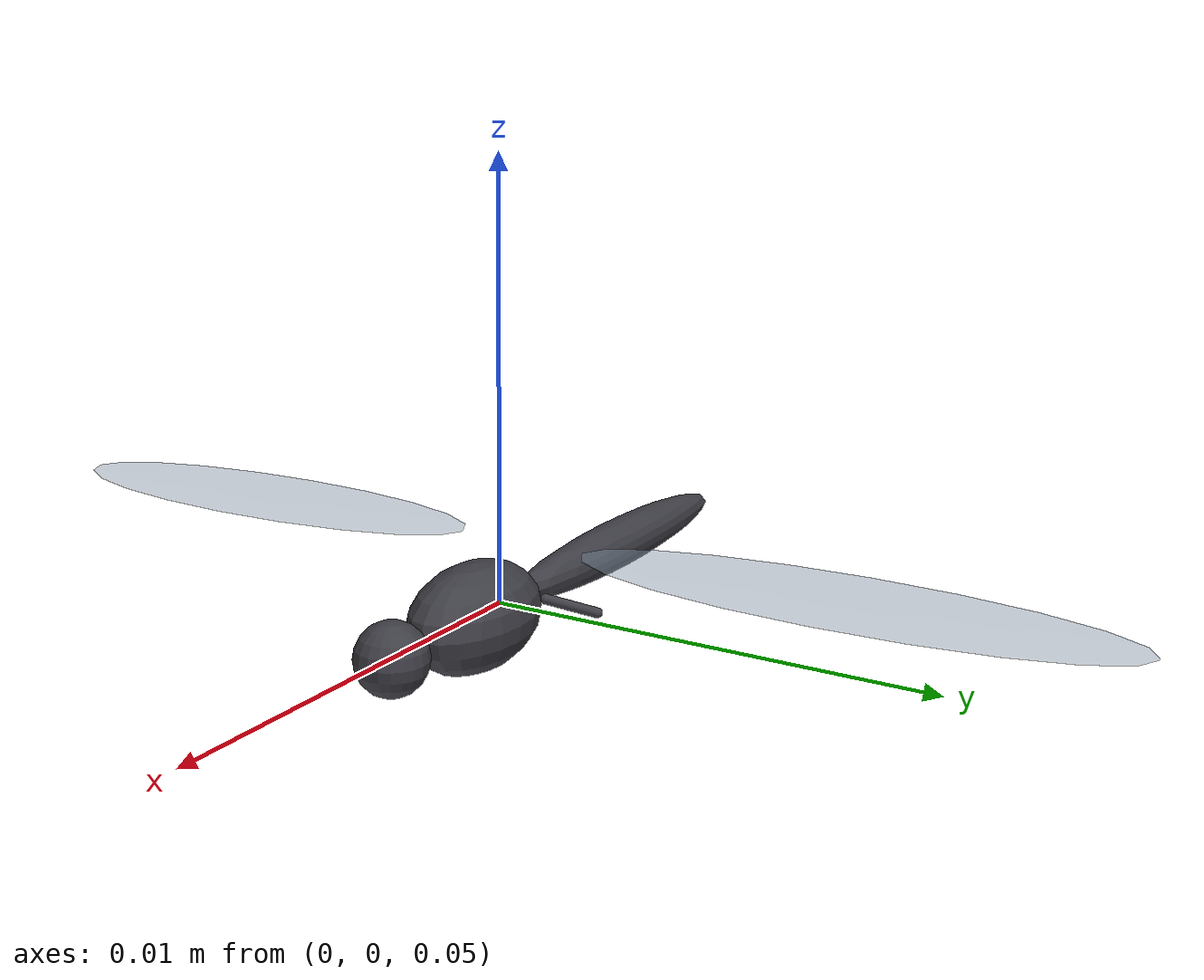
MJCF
<mujoco model="flapping_flyer">

  <option timestep="1e-4" gravity="0 0 -9.81" integrator="implicitfast"/>

  <!-- ===================== VISUALS (menagerie look) ===================== -->
  <visual>
    <headlight diffuse="0.6 0.6 0.6" ambient="0.3 0.3 0.3" specular="0 0 0"/>
    <rgba haze="0.15 0.25 0.35 1"/>
    <global azimuth="120" elevation="-20" offwidth="1280" offheight="960"/>
  </visual>

  <asset>
    <texture type="skybox" builtin="gradient" rgb1="0.3 0.5 0.7" rgb2="0 0 0"
             width="512" height="3072"/>
    <texture type="2d" name="groundplane" builtin="checker" mark="edge"
             rgb1="0.2 0.3 0.4" rgb2="0.1 0.2 0.3" markrgb="0.8 0.8 0.8"
             width="300" height="300"/>
    <material name="groundplane" texture="groundplane" texuniform="true"
              texrepeat="5 5" reflectance="0.2"/>
    <material name="thorax_mat" rgba="0.25 0.25 0.28 1"/>
    <material name="wing_mat"   rgba="0.55 0.62 0.70 0.45"/>
  </asset>

  <default>
    <joint damping="1e-8" armature="0"/>
    <geom density="1200"/>
  </default>

  <worldbody>
    <light pos="0 0 0.3" dir="0 0 -1" directional="true"
           diffuse="0.7 0.7 0.7"/>
    <geom name="floor" type="plane" size="0 0 0.01" material="groundplane"/>
    <geom name="bot" type="box" pos="0.060 -0.030 0.04" size="0.080 0.002 0.04" group="3" rgba="0.62 0.66 0.72 1" contype="0" conaffinity="0"/>
    <geom name="rgt" type="box" pos="0.130  0.060 0.04" size="0.002 0.092 0.04" group="3" rgba="0.62 0.66 0.72 1" contype="0" conaffinity="0"/>
    <geom name="topi" type="box" pos="0.030 0.030 0.04" size="0.042 0.002 0.04" group="3" rgba="0.62 0.66 0.72 1" contype="0" conaffinity="0"/>
    <geom name="lfti" type="box" pos="0.070 0.090 0.04" size="0.002 0.062 0.04" group="3" rgba="0.62 0.66 0.72 1" contype="0" conaffinity="0"/>

    <body name="thorax" pos="0 0 0.05">

      <!-- main flight mass: thorax block, just below the wing hinges -->
      <geom name="thorax_g" type="ellipsoid" pos="0.001 0 0"
            size="0.0020 0.0012 0.0012" mass="60e-6" material="thorax_mat"/>
      <!-- head: small, forward -->
      <geom name="head_g" type="sphere" pos="0.0040 0 0"
            size="0.0008" mass="3e-6" material="thorax_mat"/>
      <!-- abdomen / tail: long, THIN, LIGHT, trailing aft. Tapered ellipsoid
           reads as an abdomen and gives a little aft area for pitch stability
           at almost no mass cost. -->
      <geom name="tail_g" type="ellipsoid" pos="-0.0055 0 0"
            size="0.0050 0.0006 0.0006" mass="12e-6" material="thorax_mat"/>

      <!-- halteres: tiny nubs just behind the wing bases. Visual now,
           EARMARKED as the future rate sensor. Mass ~0.1 mg each (negligible). -->
      <geom name="haltere_R" type="capsule" fromto="-0.0008 0.0007 0  -0.0016 0.0016 -0.0004"
            size="0.00012" mass="1e-7" material="thorax_mat"/>
      <geom name="haltere_L" type="capsule" fromto="-0.0008 -0.0007 0  -0.0016 -0.0016 -0.0004"
            size="0.00012" mass="1e-7" material="thorax_mat"/>

      <!-- ============ RIGHT WING (extends +y) ============
           shoulder above & right of the thorax centre -->
      <body name="stroke_R" pos="0 0.0010 0.0012">
        <joint name="stroke_R" type="hinge" axis="0 0 1" range="-90 90" armature="1e-8"/>
        <inertial pos="0 0 0" mass="1e-7" diaginertia="1e-13 1e-13 1e-13"/>
        <body name="wing_R" pos="0 0 0">
          <joint name="pitch_R" type="hinge" axis="0 1 0" range="-120 120" armature="1e-8"/>
          <geom name="wing_R_g" type="ellipsoid" pos="-0.000875 0.0066 0"
                size="0.00175 0.0060 0.000025" material="wing_mat"
                mass="1.0e-6"/>
        </body>
      </body>

      <!-- ============ LEFT WING (extends -y) ============ -->
      <body name="stroke_L" pos="0 -0.0010 0.0012">
        <joint name="stroke_L" type="hinge" axis="0 0 1" range="-90 90" armature="1e-8"/>
        <inertial pos="0 0 0" mass="1e-7" diaginertia="1e-13 1e-13 1e-13"/>
        <body name="wing_L" pos="0 0 0">
          <joint name="pitch_L" type="hinge" axis="0 1 0" range="-120 120" armature="1e-8"/>
          <geom name="wing_L_g" type="ellipsoid" pos="-0.000875 -0.0066 0"
                size="0.00175 0.0060 0.000025" material="wing_mat"
                mass="1.0e-6"/>
        </body>
      </body>
    </body>
  </worldbody>

  <!-- Position actuators on the four hinges. Gains kept gentle so they are
       stable under implicitfast; Stage 2 may instead PRESCRIBE kinematics. -->
  <actuator>
    <position name="a_stroke_R" joint="stroke_R" kp="0.01" kv="1e-5"/>
    <position name="a_pitch_R"  joint="pitch_R"  kp="0.01" kv="1e-5"/>
    <position name="a_stroke_L" joint="stroke_L" kp="0.01" kv="1e-5"/>
    <position name="a_pitch_L"  joint="pitch_L"  kp="0.01" kv="1e-5"/>
  </actuator>
</mujoco>
